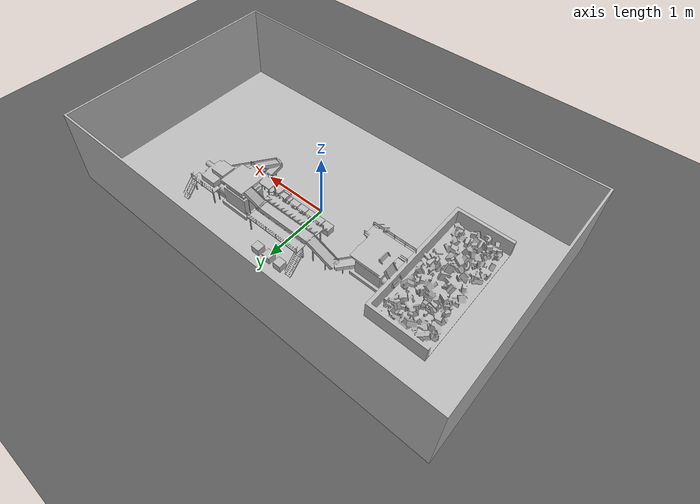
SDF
<sdf version="1.7">
 <world name="demo_facility_scaled">
  <model name="ground_plane">
   <static>true</static>
   <link name="link">
    <collision name="collision">
     <geometry><plane><normal>0 0 1</normal><size>12.0 10.0</size></plane></geometry>
    </collision>
    <visual name="visual">
     <geometry><plane><normal>0 0 1</normal><size>12.0 10.0</size></plane></geometry>
     <material><ambient>0.3 0.3 0.3 1</ambient><diffuse>0.35 0.35 0.35 1</diffuse></material>
     <plugin filename="ignition-gazebo-thermal-system" name="ignition::gazebo::systems::Thermal">
      <temperature>288.15</temperature>
     </plugin>
    </visual>
   </link>
  </model>
  <model name="hall_shell">
   <static>true</static>
   <link name="link">
    <visual name="visual">
     <geometry>
      <mesh><uri>model://hall_shell/meshes/hall_shell.obj</uri><scale>0.0990099 0.0990099 0.0990099</scale></mesh>
     </geometry>
     <plugin filename="ignition-gazebo-thermal-system" name="ignition::gazebo::systems::Thermal">
      <temperature>288.15</temperature>
     </plugin>
    </visual>
    <collision name="collision">
     <geometry>
      <mesh><uri>model://hall_shell/meshes/hall_shell.obj</uri><scale>0.0990099 0.0990099 0.0990099</scale></mesh>
     </geometry>
    </collision>
   </link>
  </model>
  <model name="bunker">
   <static>true</static>
   <pose>-0.145177 -0.038474 0 0 0 0.000000</pose>
   <link name="link">
    <visual name="visual">
     <geometry>
      <mesh><uri>model://bunker/meshes/bunker.obj</uri><scale>0.07474982 0.07474982 0.07474982</scale></mesh>
     </geometry>
     <plugin filename="ignition-gazebo-thermal-system" name="ignition::gazebo::systems::Thermal">
      <temperature>323.65</temperature>
     </plugin>
    </visual>
    <collision name="collision">
     <geometry>
      <mesh><uri>model://bunker/meshes/bunker.obj</uri><scale>0.07474982 0.07474982 0.07474982</scale></mesh>
     </geometry>
    </collision>
   </link>
  </model>
  <model name="primary_shredder">
   <static>true</static>
   <pose>-0.145177 -0.038474 0 0 0 0.000000</pose>
   <link name="link">
    <visual name="visual">
     <geometry>
      <mesh>
       <uri>model://primary_shredder/meshes/primary_shredder.obj</uri>
       <scale>0.07474982 0.07474982 0.07474982</scale>
      </mesh>
     </geometry>
     <plugin filename="ignition-gazebo-thermal-system" name="ignition::gazebo::systems::Thermal">
      <temperature>326.25</temperature>
     </plugin>
    </visual>
    <collision name="collision">
     <geometry>
      <mesh>
       <uri>model://primary_shredder/meshes/primary_shredder.obj</uri>
       <scale>0.07474982 0.07474982 0.07474982</scale>
      </mesh>
     </geometry>
    </collision>
   </link>
  </model>
  <model name="sorting_line">
   <static>true</static>
   <pose>-0.145177 -0.038474 0 0 0 0.000000</pose>
   <link name="link">
    <visual name="visual">
     <geometry>
      <mesh>
       <uri>model://sorting_line/meshes/sorting_line.obj</uri>
       <scale>0.07474982 0.07474982 0.07474982</scale>
      </mesh>
     </geometry>
     <plugin filename="ignition-gazebo-thermal-system" name="ignition::gazebo::systems::Thermal">
      <temperature>330.75</temperature>
     </plugin>
    </visual>
    <collision name="collision">
     <geometry>
      <mesh>
       <uri>model://sorting_line/meshes/sorting_line.obj</uri>
       <scale>0.07474982 0.07474982 0.07474982</scale>
      </mesh>
     </geometry>
    </collision>
   </link>
  </model>
  <model name="secondary_processor">
   <static>true</static>
   <pose>-0.145177 -0.038474 0 0 0 0.000000</pose>
   <link name="link">
    <visual name="visual">
     <geometry>
      <mesh>
       <uri>model://secondary_processor/meshes/secondary_processor.obj</uri>
       <scale>0.07474982 0.07474982 0.07474982</scale>
      </mesh>
     </geometry>
     <plugin filename="ignition-gazebo-thermal-system" name="ignition::gazebo::systems::Thermal">
      <temperature>331.75</temperature>
     </plugin>
    </visual>
    <collision name="collision">
     <geometry>
      <mesh>
       <uri>model://secondary_processor/meshes/secondary_processor.obj</uri>
       <scale>0.07474982 0.07474982 0.07474982</scale>
      </mesh>
     </geometry>
    </collision>
   </link>
  </model>
  <model name="baler">
   <static>true</static>
   <pose>-0.145177 -0.038474 0 0 0 0.000000</pose>
   <link name="link">
    <visual name="visual">
     <geometry>
      <mesh><uri>model://baler/meshes/baler.obj</uri><scale>0.07474982 0.07474982 0.07474982</scale></mesh>
     </geometry>
     <plugin filename="ignition-gazebo-thermal-system" name="ignition::gazebo::systems::Thermal">
      <temperature>329.25</temperature>
     </plugin>
    </visual>
    <collision name="collision">
     <geometry>
      <mesh><uri>model://baler/meshes/baler.obj</uri><scale>0.07474982 0.07474982 0.07474982</scale></mesh>
     </geometry>
    </collision>
   </link>
  </model>
 </world>
</sdf>
